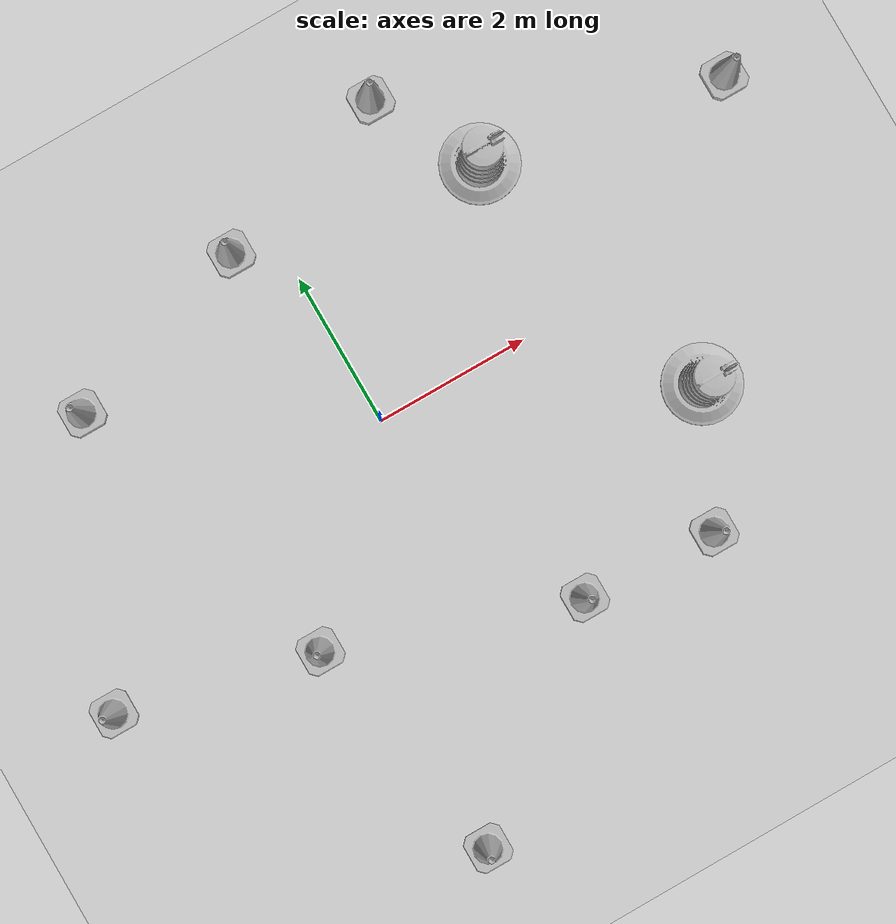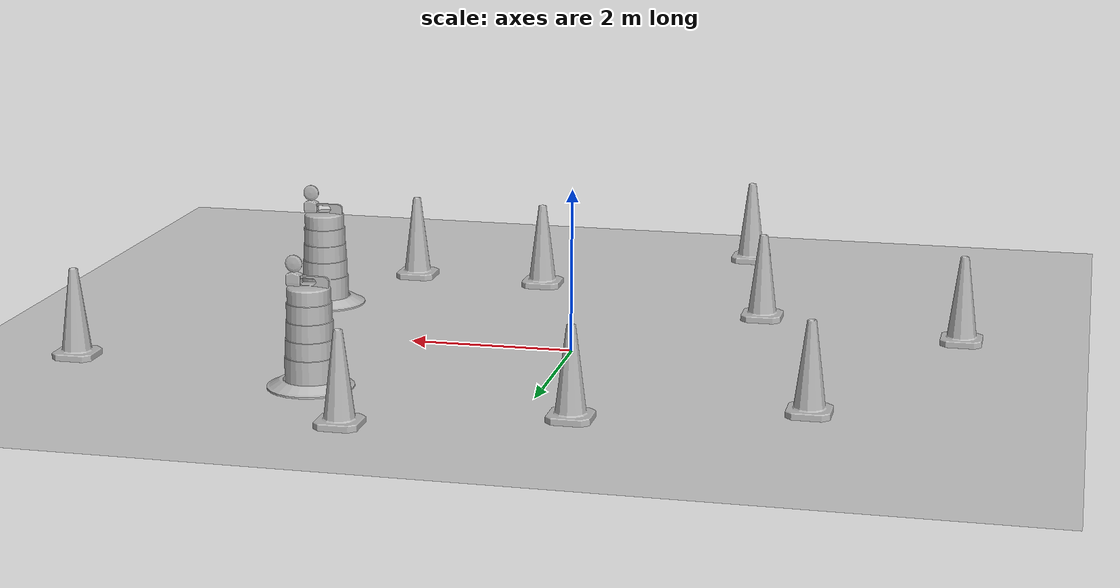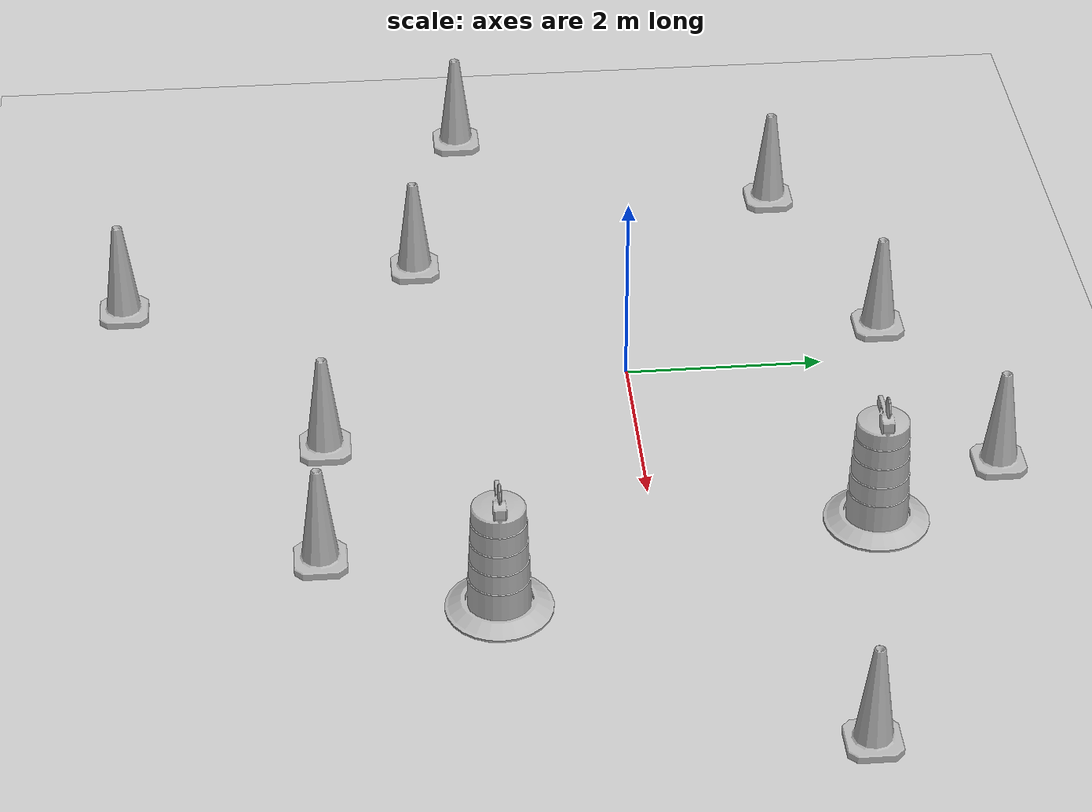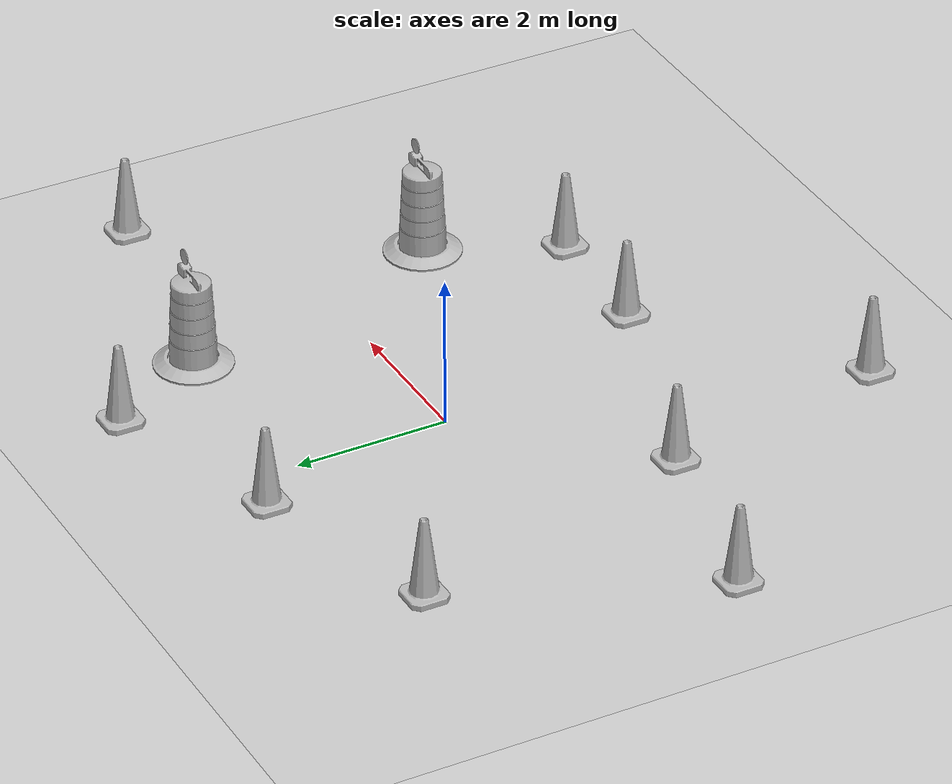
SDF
<sdf version="1.7">
 <world name="default">
  <light name="sun" type="directional">
   <pose>0 0 10 0 -0 0</pose>
   <diffuse>0.8 0.8 0.8 1</diffuse>
   <specular>0.2 0.2 0.2 1</specular>
   <attenuation>
    <range>1000</range>
    <constant>0.9</constant>
    <linear>0.01</linear>
    <quadratic>0.001</quadratic>
   </attenuation>
   <direction>-0.5 0.1 -0.9</direction>
   <spot><inner_angle>0</inner_angle><outer_angle>0</outer_angle><falloff>0</falloff></spot>
  </light>
  <model name="ground_plane">
   <static>1</static>
   <link name="link">
    <collision name="collision">
     <geometry><plane><normal>0 0 1</normal><size>100 100</size></plane></geometry>
     <surface>
      <contact><collide_bitmask>65535</collide_bitmask></contact>
      <friction><ode><mu>100</mu><mu2>50</mu2></ode></friction>
     </surface>
    </collision>
    <visual name="visual">
     <cast_shadows>0</cast_shadows>
     <geometry><plane><normal>0 0 1</normal><size>100 100</size></plane></geometry>
     <material>
      <script><uri>file://media/materials/scripts/gazebo.material</uri><name>Gazebo/Grey</name></script>
     </material>
    </visual>
   </link>
  </model>
  <gravity>0 0 -9.8</gravity>
  <magnetic_field>6e-06 2.3e-05 -4.2e-05</magnetic_field>
  <atmosphere type="adiabatic"/>
  <physics type="ode">
   <max_step_size>0.001</max_step_size>
   <real_time_factor>1</real_time_factor>
   <real_time_update_rate>1000</real_time_update_rate>
  </physics>
  <scene><ambient>0.4 0.4 0.4 1</ambient><background>0.7 0.7 0.7 1</background><shadows>1</shadows></scene>
  <audio><device>default</device></audio>
  <spherical_coordinates>
   <surface_model>EARTH_WGS84</surface_model>
   <latitude_deg>0</latitude_deg>
   <longitude_deg>0</longitude_deg>
   <elevation>0</elevation>
   <heading_deg>0</heading_deg>
  </spherical_coordinates>
  <model name="Construction Cone">
   <link name="link">
    <collision name="collision">
     <geometry>
      <mesh><scale>10 10 10</scale><uri>model://construction_cone/meshes/construction_cone.dae</uri></mesh>
     </geometry>
    </collision>
    <visual name="visual">
     <geometry>
      <mesh><scale>10 10 10</scale><uri>model://construction_cone/meshes/construction_cone.dae</uri></mesh>
     </geometry>
    </visual>
    <inertial>
     <inertia><ixx>1</ixx><ixy>0</ixy><ixz>0</ixz><iyy>1</iyy><iyz>0</iyz><izz>1</izz></inertia>
     <mass>1</mass>
    </inertial>
   </link>
   <pose>-0.565949 2.68826 -3e-06 1e-06 -0 0</pose>
  </model>
  <model name="Construction Cone_0">
   <link name="link">
    <collision name="collision">
     <geometry>
      <mesh><scale>10 10 10</scale><uri>model://construction_cone/meshes/construction_cone.dae</uri></mesh>
     </geometry>
    </collision>
    <visual name="visual">
     <geometry>
      <mesh><scale>10 10 10</scale><uri>model://construction_cone/meshes/construction_cone.dae</uri></mesh>
     </geometry>
    </visual>
    <inertial>
     <inertia><ixx>1</ixx><ixy>0</ixy><ixz>0</ixz><iyy>1</iyy><iyz>0</iyz><izz>1</izz></inertia>
     <mass>1</mass>
    </inertial>
   </link>
   <pose>-3.10698 1.89922 -1e-06 4e-06 -0 0</pose>
  </model>
  <model name="Construction Cone_1">
   <link name="link">
    <collision name="collision">
     <geometry>
      <mesh><scale>10 10 10</scale><uri>model://construction_cone/meshes/construction_cone.dae</uri></mesh>
     </geometry>
    </collision>
    <visual name="visual">
     <geometry>
      <mesh><scale>10 10 10</scale><uri>model://construction_cone/meshes/construction_cone.dae</uri></mesh>
     </geometry>
    </visual>
    <inertial>
     <inertia><ixx>1</ixx><ixy>0</ixy><ixz>0</ixz><iyy>1</iyy><iyz>0</iyz><izz>1</izz></inertia>
     <mass>1</mass>
    </inertial>
   </link>
   <pose>-2.03794 -2.05513 -8e-06 1e-06 -0 0</pose>
  </model>
  <model name="Construction Cone_2">
   <link name="link">
    <collision name="collision">
     <geometry>
      <mesh><scale>10 10 10</scale><uri>model://construction_cone/meshes/construction_cone.dae</uri></mesh>
     </geometry>
    </collision>
    <visual name="visual">
     <geometry>
      <mesh><scale>10 10 10</scale><uri>model://construction_cone/meshes/construction_cone.dae</uri></mesh>
     </geometry>
    </visual>
    <inertial>
     <inertia><ixx>1</ixx><ixy>0</ixy><ixz>0</ixz><iyy>1</iyy><iyz>0</iyz><izz>1</izz></inertia>
     <mass>1</mass>
    </inertial>
   </link>
   <pose>1.06491 -3.09537 -0 0 -0 0</pose>
  </model>
  <model name="Construction Barrel">
   <link name="link">
    <inertial>
     <pose>0 0 0.4 0 -0 0</pose>
     <mass>500</mass>
     <inertia><ixx>51.2096</ixx><iyy>51.2096</iyy><izz>25</izz><ixy>0</ixy><ixz>0</ixz><iyz>0</iyz></inertia>
    </inertial>
    <collision name="collision">
     <geometry><mesh><uri>model://construction_barrel/meshes/construction_barrel.dae</uri></mesh></geometry>
    </collision>
    <visual name="visual">
     <geometry><mesh><uri>model://construction_barrel/meshes/construction_barrel.dae</uri></mesh></geometry>
    </visual>
   </link>
   <pose>3.61475 -1.56025 -1e-06 -3e-06 -1e-06 -1e-05</pose>
  </model>
  <model name="Construction Cone_3">
   <link name="link">
    <collision name="collision">
     <geometry>
      <mesh><scale>10 10 10</scale><uri>model://construction_cone/meshes/construction_cone.dae</uri></mesh>
     </geometry>
    </collision>
    <visual name="visual">
     <geometry>
      <mesh><scale>10 10 10</scale><uri>model://construction_cone/meshes/construction_cone.dae</uri></mesh>
     </geometry>
    </visual>
    <inertial>
     <inertia><ixx>1</ixx><ixy>0</ixy><ixz>0</ixz><iyy>1</iyy><iyz>0</iyz><izz>1</izz></inertia>
     <mass>1</mass>
    </inertial>
   </link>
   <pose>1.85322 3.47317 -0 0 -1e-06 0</pose>
  </model>
  <model name="Construction Cone_4">
   <link name="link">
    <collision name="collision">
     <geometry>
      <mesh><scale>10 10 10</scale><uri>model://construction_cone/meshes/construction_cone.dae</uri></mesh>
     </geometry>
    </collision>
    <visual name="visual">
     <geometry>
      <mesh><scale>10 10 10</scale><uri>model://construction_cone/meshes/construction_cone.dae</uri></mesh>
     </geometry>
    </visual>
    <inertial>
     <inertia><ixx>1</ixx><ixy>0</ixy><ixz>0</ixz><iyy>1</iyy><iyz>0</iyz><izz>1</izz></inertia>
     <mass>1</mass>
    </inertial>
   </link>
   <pose>2.82739 -3.18957 0 -1e-06 0 0</pose>
  </model>
  <model name="Construction Barrel_0">
   <link name="link">
    <inertial>
     <pose>0 0 0.4 0 -0 0</pose>
     <mass>500</mass>
     <inertia><ixx>51.2096</ixx><iyy>51.2096</iyy><izz>25</izz><ixy>0</ixy><ixz>0</ixz><iyz>0</iyz></inertia>
    </inertial>
    <collision name="collision">
     <geometry><mesh><uri>model://construction_barrel/meshes/construction_barrel.dae</uri></mesh></geometry>
    </collision>
    <visual name="visual">
     <geometry><mesh><uri>model://construction_barrel/meshes/construction_barrel.dae</uri></mesh></geometry>
    </visual>
   </link>
   <pose>2.61959 2.13186 -3e-06 -9e-06 -4e-06 -6e-06</pose>
  </model>
  <model name="Construction Cone_5">
   <link name="link">
    <collision name="collision">
     <geometry>
      <mesh><scale>10 10 10</scale><uri>model://construction_cone/meshes/construction_cone.dae</uri></mesh>
     </geometry>
    </collision>
    <visual name="visual">
     <geometry>
      <mesh><scale>10 10 10</scale><uri>model://construction_cone/meshes/construction_cone.dae</uri></mesh>
     </geometry>
    </visual>
    <inertial>
     <inertia><ixx>1</ixx><ixy>0</ixy><ixz>0</ixz><iyy>1</iyy><iyz>0</iyz><izz>1</izz></inertia>
     <mass>1</mass>
    </inertial>
   </link>
   <pose>5.7502 1.56819 -0 0 -1e-06 0</pose>
  </model>
  <model name="Construction Cone_6">
   <link name="link">
    <collision name="collision">
     <geometry>
      <mesh><scale>10 10 10</scale><uri>model://construction_cone/meshes/construction_cone.dae</uri></mesh>
     </geometry>
    </collision>
    <visual name="visual">
     <geometry>
      <mesh><scale>10 10 10</scale><uri>model://construction_cone/meshes/construction_cone.dae</uri></mesh>
     </geometry>
    </visual>
    <inertial>
     <inertia><ixx>1</ixx><ixy>0</ixy><ixz>0</ixz><iyy>1</iyy><iyz>0</iyz><izz>1</izz></inertia>
     <mass>1</mass>
    </inertial>
   </link>
   <pose>-1.46345 -5.12354 -0 0 -0 0</pose>
  </model>
  <model name="Construction Cone_7">
   <link name="link">
    <collision name="collision">
     <geometry>
      <mesh><scale>10 10 10</scale><uri>model://construction_cone/meshes/construction_cone.dae</uri></mesh>
     </geometry>
    </collision>
    <visual name="visual">
     <geometry>
      <mesh><scale>10 10 10</scale><uri>model://construction_cone/meshes/construction_cone.dae</uri></mesh>
     </geometry>
    </visual>
    <inertial>
     <inertia><ixx>1</ixx><ixy>0</ixy><ixz>0</ixz><iyy>1</iyy><iyz>0</iyz><izz>1</izz></inertia>
     <mass>1</mass>
    </inertial>
   </link>
   <pose>-4.57745 -1.45772 -0 0 -1e-06 0</pose>
  </model>
 </world>
</sdf>
